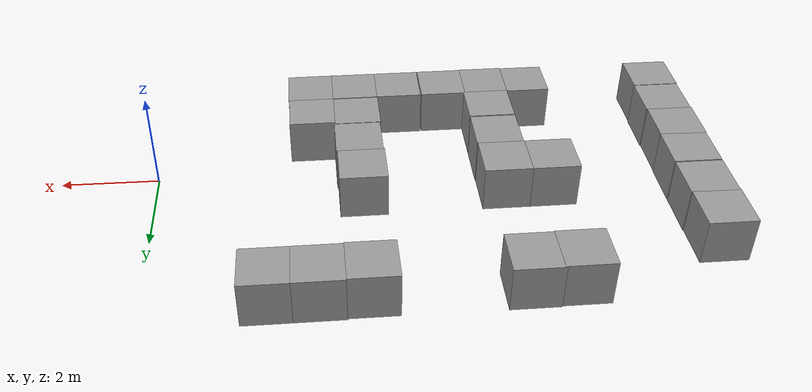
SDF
<sdf version="1.7">
 <model name="maze2.1">
  <link name="link_11">
   <inertial>
    <mass>1</mass>
    <inertia>
     <ixx>0.166667</ixx>
     <ixy>0</ixy>
     <ixz>0</ixz>
     <iyy>0.166667</iyy>
     <iyz>0</iyz>
     <izz>0.166667</izz>
    </inertia>
   </inertial>
   <pose>-7.25694 3.37065 0 0 -0 0</pose>
   <visual name="visual">
    <geometry><box><size>1 1 1</size></box></geometry>
    <material>
     <lighting>1</lighting>
     <script><uri>file://media/materials/scripts/gazebo.material</uri><name>Gazebo/Grey</name></script>
     <shader type="pixel"/>
    </material>
   </visual>
   <collision name="collision">
    <geometry><box><size>1 1 1</size></box></geometry>
    <surface>
     <friction>
      <ode><mu>1</mu><mu2>1</mu2><fdir1>0 0 0</fdir1><slip1>0</slip1><slip2>0</slip2></ode>
      <torsional>
       <coefficient>1</coefficient>
       <patch_radius>0</patch_radius>
       <surface_radius>0</surface_radius>
       <use_patch_radius>1</use_patch_radius>
       <ode><slip>0</slip></ode>
      </torsional>
     </friction>
     <bounce><restitution_coefficient>0</restitution_coefficient><threshold>1e+06</threshold></bounce>
     <contact>
      <collide_without_contact>0</collide_without_contact>
      <collide_without_contact_bitmask>1</collide_without_contact_bitmask>
      <collide_bitmask>1</collide_bitmask>
      <ode>
       <soft_cfm>0</soft_cfm>
       <soft_erp>0.2</soft_erp>
       <kp>1e+13</kp>
       <kd>1</kd>
       <max_vel>0.01</max_vel>
       <min_depth>0</min_depth>
      </ode>
      <bullet>
       <split_impulse>1</split_impulse>
       <split_impulse_penetration_threshold>-0.01</split_impulse_penetration_threshold>
       <soft_cfm>0</soft_cfm>
       <soft_erp>0.2</soft_erp>
       <kp>1e+13</kp>
       <kd>1</kd>
      </bullet>
     </contact>
    </surface>
   </collision>
  </link>
  <link name="link_13">
   <inertial>
    <mass>1</mass>
    <inertia>
     <ixx>0.166667</ixx>
     <ixy>0</ixy>
     <ixz>0</ixz>
     <iyy>0.166667</iyy>
     <iyz>0</iyz>
     <izz>0.166667</izz>
    </inertia>
   </inertial>
   <pose>-6.26868 -2.63049 0 0 -0 0</pose>
   <visual name="visual">
    <geometry><box><size>1 1 1</size></box></geometry>
    <material>
     <lighting>1</lighting>
     <script><uri>file://media/materials/scripts/gazebo.material</uri><name>Gazebo/Grey</name></script>
     <shader type="pixel"/>
    </material>
   </visual>
   <collision name="collision">
    <geometry><box><size>1 1 1</size></box></geometry>
    <surface>
     <friction>
      <ode><mu>1</mu><mu2>1</mu2><fdir1>0 0 0</fdir1><slip1>0</slip1><slip2>0</slip2></ode>
      <torsional>
       <coefficient>1</coefficient>
       <patch_radius>0</patch_radius>
       <surface_radius>0</surface_radius>
       <use_patch_radius>1</use_patch_radius>
       <ode><slip>0</slip></ode>
      </torsional>
     </friction>
     <bounce><restitution_coefficient>0</restitution_coefficient><threshold>1e+06</threshold></bounce>
     <contact>
      <collide_without_contact>0</collide_without_contact>
      <collide_without_contact_bitmask>1</collide_without_contact_bitmask>
      <collide_bitmask>1</collide_bitmask>
      <ode>
       <soft_cfm>0</soft_cfm>
       <soft_erp>0.2</soft_erp>
       <kp>1e+13</kp>
       <kd>1</kd>
       <max_vel>0.01</max_vel>
       <min_depth>0</min_depth>
      </ode>
      <bullet>
       <split_impulse>1</split_impulse>
       <split_impulse_penetration_threshold>-0.01</split_impulse_penetration_threshold>
       <soft_cfm>0</soft_cfm>
       <soft_erp>0.2</soft_erp>
       <kp>1e+13</kp>
       <kd>1</kd>
      </bullet>
     </contact>
    </surface>
   </collision>
  </link>
  <link name="link_14">
   <inertial>
    <mass>1</mass>
    <inertia>
     <ixx>0.166667</ixx>
     <ixy>0</ixy>
     <ixz>0</ixz>
     <iyy>0.166667</iyy>
     <iyz>0</iyz>
     <izz>0.166667</izz>
    </inertia>
   </inertial>
   <pose>-7.23944 -2.64333 0 0 -0 0</pose>
   <visual name="visual">
    <geometry><box><size>1 1 1</size></box></geometry>
    <material>
     <lighting>1</lighting>
     <script><uri>file://media/materials/scripts/gazebo.material</uri><name>Gazebo/Grey</name></script>
     <shader type="pixel"/>
    </material>
   </visual>
   <collision name="collision">
    <geometry><box><size>1 1 1</size></box></geometry>
    <surface>
     <friction>
      <ode><mu>1</mu><mu2>1</mu2><fdir1>0 0 0</fdir1><slip1>0</slip1><slip2>0</slip2></ode>
      <torsional>
       <coefficient>1</coefficient>
       <patch_radius>0</patch_radius>
       <surface_radius>0</surface_radius>
       <use_patch_radius>1</use_patch_radius>
       <ode><slip>0</slip></ode>
      </torsional>
     </friction>
     <bounce><restitution_coefficient>0</restitution_coefficient><threshold>1e+06</threshold></bounce>
     <contact>
      <collide_without_contact>0</collide_without_contact>
      <collide_without_contact_bitmask>1</collide_without_contact_bitmask>
      <collide_bitmask>1</collide_bitmask>
      <ode>
       <soft_cfm>0</soft_cfm>
       <soft_erp>0.2</soft_erp>
       <kp>1e+13</kp>
       <kd>1</kd>
       <max_vel>0.01</max_vel>
       <min_depth>0</min_depth>
      </ode>
      <bullet>
       <split_impulse>1</split_impulse>
       <split_impulse_penetration_threshold>-0.01</split_impulse_penetration_threshold>
       <soft_cfm>0</soft_cfm>
       <soft_erp>0.2</soft_erp>
       <kp>1e+13</kp>
       <kd>1</kd>
      </bullet>
     </contact>
    </surface>
   </collision>
  </link>
  <link name="link_1_clone_102">
   <inertial>
    <mass>1</mass>
    <inertia>
     <ixx>0.166667</ixx>
     <ixy>0</ixy>
     <ixz>0</ixz>
     <iyy>0.166667</iyy>
     <iyz>0</iyz>
     <izz>0.166667</izz>
    </inertia>
   </inertial>
   <pose>-2.26838 3.374 0 0 -0 0</pose>
   <visual name="visual">
    <geometry><box><size>1 1 1</size></box></geometry>
    <material>
     <lighting>1</lighting>
     <script><uri>file://media/materials/scripts/gazebo.material</uri><name>Gazebo/Grey</name></script>
     <shader type="pixel"><normal_map>__default__</normal_map></shader>
     <ambient>0.3 0.3 0.3 1</ambient>
     <diffuse>0.7 0.7 0.7 1</diffuse>
     <specular>0.01 0.01 0.01 1</specular>
     <emissive>0 0 0 1</emissive>
    </material>
   </visual>
   <collision name="collision">
    <geometry><box><size>1 1 1</size></box></geometry>
    <surface>
     <friction>
      <ode><mu>1</mu><mu2>1</mu2><fdir1>0 0 0</fdir1><slip1>0</slip1><slip2>0</slip2></ode>
      <torsional>
       <coefficient>1</coefficient>
       <patch_radius>0</patch_radius>
       <surface_radius>0</surface_radius>
       <use_patch_radius>1</use_patch_radius>
       <ode><slip>0</slip></ode>
      </torsional>
     </friction>
     <bounce><restitution_coefficient>0</restitution_coefficient><threshold>1e+06</threshold></bounce>
     <contact>
      <collide_without_contact>0</collide_without_contact>
      <collide_without_contact_bitmask>1</collide_without_contact_bitmask>
      <collide_bitmask>1</collide_bitmask>
      <ode>
       <soft_cfm>0</soft_cfm>
       <soft_erp>0.2</soft_erp>
       <kp>1e+13</kp>
       <kd>1</kd>
       <max_vel>0.01</max_vel>
       <min_depth>0</min_depth>
      </ode>
      <bullet>
       <split_impulse>1</split_impulse>
       <split_impulse_penetration_threshold>-0.01</split_impulse_penetration_threshold>
       <soft_cfm>0</soft_cfm>
       <soft_erp>0.2</soft_erp>
       <kp>1e+13</kp>
       <kd>1</kd>
      </bullet>
     </contact>
    </surface>
   </collision>
  </link>
  <link name="link_1_clone_104">
   <inertial>
    <mass>1</mass>
    <inertia>
     <ixx>0.166667</ixx>
     <ixy>0</ixy>
     <ixz>0</ixz>
     <iyy>0.166667</iyy>
     <iyz>0</iyz>
     <izz>0.166667</izz>
    </inertia>
   </inertial>
   <pose>-8.24618 0.374651 0 0 -0 0</pose>
   <visual name="visual">
    <geometry><box><size>1 1 1</size></box></geometry>
    <material>
     <lighting>1</lighting>
     <script><uri>file://media/materials/scripts/gazebo.material</uri><name>Gazebo/Grey</name></script>
     <shader type="pixel"><normal_map>__default__</normal_map></shader>
     <ambient>0.3 0.3 0.3 1</ambient>
     <diffuse>0.7 0.7 0.7 1</diffuse>
     <specular>0.01 0.01 0.01 1</specular>
     <emissive>0 0 0 1</emissive>
    </material>
   </visual>
   <collision name="collision">
    <geometry><box><size>1 1 1</size></box></geometry>
    <surface>
     <friction>
      <ode><mu>1</mu><mu2>1</mu2><fdir1>0 0 0</fdir1><slip1>0</slip1><slip2>0</slip2></ode>
      <torsional>
       <coefficient>1</coefficient>
       <patch_radius>0</patch_radius>
       <surface_radius>0</surface_radius>
       <use_patch_radius>1</use_patch_radius>
       <ode><slip>0</slip></ode>
      </torsional>
     </friction>
     <bounce><restitution_coefficient>0</restitution_coefficient><threshold>1e+06</threshold></bounce>
     <contact>
      <collide_without_contact>0</collide_without_contact>
      <collide_without_contact_bitmask>1</collide_without_contact_bitmask>
      <collide_bitmask>1</collide_bitmask>
      <ode>
       <soft_cfm>0</soft_cfm>
       <soft_erp>0.2</soft_erp>
       <kp>1e+13</kp>
       <kd>1</kd>
       <max_vel>0.01</max_vel>
       <min_depth>0</min_depth>
      </ode>
      <bullet>
       <split_impulse>1</split_impulse>
       <split_impulse_penetration_threshold>-0.01</split_impulse_penetration_threshold>
       <soft_cfm>0</soft_cfm>
       <soft_erp>0.2</soft_erp>
       <kp>1e+13</kp>
       <kd>1</kd>
      </bullet>
     </contact>
    </surface>
   </collision>
  </link>
  <link name="link_1_clone_106">
   <inertial>
    <mass>1</mass>
    <inertia>
     <ixx>0.166667</ixx>
     <ixy>0</ixy>
     <ixz>0</ixz>
     <iyy>0.166667</iyy>
     <iyz>0</iyz>
     <izz>0.166667</izz>
    </inertia>
   </inertial>
   <pose>-8.22273 3.35195 0 0 -0 0</pose>
   <visual name="visual">
    <geometry><box><size>1 1 1</size></box></geometry>
    <material>
     <lighting>1</lighting>
     <script><uri>file://media/materials/scripts/gazebo.material</uri><name>Gazebo/Grey</name></script>
     <shader type="pixel"><normal_map>__default__</normal_map></shader>
     <ambient>0.3 0.3 0.3 1</ambient>
     <diffuse>0.7 0.7 0.7 1</diffuse>
     <specular>0.01 0.01 0.01 1</specular>
     <emissive>0 0 0 1</emissive>
    </material>
   </visual>
   <collision name="collision">
    <geometry><box><size>1 1 1</size></box></geometry>
    <surface>
     <friction>
      <ode><mu>1</mu><mu2>1</mu2><fdir1>0 0 0</fdir1><slip1>0</slip1><slip2>0</slip2></ode>
      <torsional>
       <coefficient>1</coefficient>
       <patch_radius>0</patch_radius>
       <surface_radius>0</surface_radius>
       <use_patch_radius>1</use_patch_radius>
       <ode><slip>0</slip></ode>
      </torsional>
     </friction>
     <bounce><restitution_coefficient>0</restitution_coefficient><threshold>1e+06</threshold></bounce>
     <contact>
      <collide_without_contact>0</collide_without_contact>
      <collide_without_contact_bitmask>1</collide_without_contact_bitmask>
      <collide_bitmask>1</collide_bitmask>
      <ode>
       <soft_cfm>0</soft_cfm>
       <soft_erp>0.2</soft_erp>
       <kp>1e+13</kp>
       <kd>1</kd>
       <max_vel>0.01</max_vel>
       <min_depth>0</min_depth>
      </ode>
      <bullet>
       <split_impulse>1</split_impulse>
       <split_impulse_penetration_threshold>-0.01</split_impulse_penetration_threshold>
       <soft_cfm>0</soft_cfm>
       <soft_erp>0.2</soft_erp>
       <kp>1e+13</kp>
       <kd>1</kd>
      </bullet>
     </contact>
    </surface>
   </collision>
  </link>
  <link name="link_1_clone_108">
   <inertial>
    <mass>1</mass>
    <inertia>
     <ixx>0.166667</ixx>
     <ixy>0</ixy>
     <ixz>0</ixz>
     <iyy>0.166667</iyy>
     <iyz>0</iyz>
     <izz>0.166667</izz>
    </inertia>
   </inertial>
   <pose>-4.24618 3.35195 0 0 -0 0</pose>
   <visual name="visual">
    <geometry><box><size>1 1 1</size></box></geometry>
    <material>
     <lighting>1</lighting>
     <script><uri>file://media/materials/scripts/gazebo.material</uri><name>Gazebo/Grey</name></script>
     <shader type="pixel"><normal_map>__default__</normal_map></shader>
     <ambient>0.3 0.3 0.3 1</ambient>
     <diffuse>0.7 0.7 0.7 1</diffuse>
     <specular>0.01 0.01 0.01 1</specular>
     <emissive>0 0 0 1</emissive>
    </material>
   </visual>
   <collision name="collision">
    <geometry><box><size>1 1 1</size></box></geometry>
    <surface>
     <friction>
      <ode><mu>1</mu><mu2>1</mu2><fdir1>0 0 0</fdir1><slip1>0</slip1><slip2>0</slip2></ode>
      <torsional>
       <coefficient>1</coefficient>
       <patch_radius>0</patch_radius>
       <surface_radius>0</surface_radius>
       <use_patch_radius>1</use_patch_radius>
       <ode><slip>0</slip></ode>
      </torsional>
     </friction>
     <bounce><restitution_coefficient>0</restitution_coefficient><threshold>1e+06</threshold></bounce>
     <contact>
      <collide_without_contact>0</collide_without_contact>
      <collide_without_contact_bitmask>1</collide_without_contact_bitmask>
      <collide_bitmask>1</collide_bitmask>
      <ode>
       <soft_cfm>0</soft_cfm>
       <soft_erp>0.2</soft_erp>
       <kp>1e+13</kp>
       <kd>1</kd>
       <max_vel>0.01</max_vel>
       <min_depth>0</min_depth>
      </ode>
      <bullet>
       <split_impulse>1</split_impulse>
       <split_impulse_penetration_threshold>-0.01</split_impulse_penetration_threshold>
       <soft_cfm>0</soft_cfm>
       <soft_erp>0.2</soft_erp>
       <kp>1e+13</kp>
       <kd>1</kd>
      </bullet>
     </contact>
    </surface>
   </collision>
  </link>
  <link name="link_1_clone_110">
   <inertial>
    <mass>1</mass>
    <inertia>
     <ixx>0.166667</ixx>
     <ixy>0</ixy>
     <ixz>0</ixz>
     <iyy>0.166667</iyy>
     <iyz>0</iyz>
     <izz>0.166667</izz>
    </inertia>
   </inertial>
   <pose>-4.25612 0.390436 0 0 -0 0</pose>
   <visual name="visual">
    <geometry><box><size>1 1 1</size></box></geometry>
    <material>
     <lighting>1</lighting>
     <script><uri>file://media/materials/scripts/gazebo.material</uri><name>Gazebo/Grey</name></script>
     <shader type="pixel"><normal_map>__default__</normal_map></shader>
     <ambient>0.3 0.3 0.3 1</ambient>
     <diffuse>0.7 0.7 0.7 1</diffuse>
     <specular>0.01 0.01 0.01 1</specular>
     <emissive>0 0 0 1</emissive>
    </material>
   </visual>
   <collision name="collision">
    <geometry><box><size>1 1 1</size></box></geometry>
    <surface>
     <friction>
      <ode><mu>1</mu><mu2>1</mu2><fdir1>0 0 0</fdir1><slip1>0</slip1><slip2>0</slip2></ode>
      <torsional>
       <coefficient>1</coefficient>
       <patch_radius>0</patch_radius>
       <surface_radius>0</surface_radius>
       <use_patch_radius>1</use_patch_radius>
       <ode><slip>0</slip></ode>
      </torsional>
     </friction>
     <bounce><restitution_coefficient>0</restitution_coefficient><threshold>1e+06</threshold></bounce>
     <contact>
      <collide_without_contact>0</collide_without_contact>
      <collide_without_contact_bitmask>1</collide_without_contact_bitmask>
      <collide_bitmask>1</collide_bitmask>
      <ode>
       <soft_cfm>0</soft_cfm>
       <soft_erp>0.2</soft_erp>
       <kp>1e+13</kp>
       <kd>1</kd>
       <max_vel>0.01</max_vel>
       <min_depth>0</min_depth>
      </ode>
      <bullet>
       <split_impulse>1</split_impulse>
       <split_impulse_penetration_threshold>-0.01</split_impulse_penetration_threshold>
       <soft_cfm>0</soft_cfm>
       <soft_erp>0.2</soft_erp>
       <kp>1e+13</kp>
       <kd>1</kd>
      </bullet>
     </contact>
    </surface>
   </collision>
  </link>
  <link name="link_1_clone_112">
   <inertial>
    <mass>1</mass>
    <inertia>
     <ixx>0.166667</ixx>
     <ixy>0</ixy>
     <ixz>0</ixz>
     <iyy>0.166667</iyy>
     <iyz>0</iyz>
     <izz>0.166667</izz>
    </inertia>
   </inertial>
   <pose>-7.24618 0.374651 0 0 -0 0</pose>
   <visual name="visual">
    <geometry><box><size>1 1 1</size></box></geometry>
    <material>
     <lighting>1</lighting>
     <script><uri>file://media/materials/scripts/gazebo.material</uri><name>Gazebo/Grey</name></script>
     <shader type="pixel"><normal_map>__default__</normal_map></shader>
     <ambient>0.3 0.3 0.3 1</ambient>
     <diffuse>0.7 0.7 0.7 1</diffuse>
     <specular>0.01 0.01 0.01 1</specular>
     <emissive>0 0 0 1</emissive>
    </material>
   </visual>
   <collision name="collision">
    <geometry><box><size>1 1 1</size></box></geometry>
    <surface>
     <friction>
      <ode><mu>1</mu><mu2>1</mu2><fdir1>0 0 0</fdir1><slip1>0</slip1><slip2>0</slip2></ode>
      <torsional>
       <coefficient>1</coefficient>
       <patch_radius>0</patch_radius>
       <surface_radius>0</surface_radius>
       <use_patch_radius>1</use_patch_radius>
       <ode><slip>0</slip></ode>
      </torsional>
     </friction>
     <bounce><restitution_coefficient>0</restitution_coefficient><threshold>1e+06</threshold></bounce>
     <contact>
      <collide_without_contact>0</collide_without_contact>
      <collide_without_contact_bitmask>1</collide_without_contact_bitmask>
      <collide_bitmask>1</collide_bitmask>
      <ode>
       <soft_cfm>0</soft_cfm>
       <soft_erp>0.2</soft_erp>
       <kp>1e+13</kp>
       <kd>1</kd>
       <max_vel>0.01</max_vel>
       <min_depth>0</min_depth>
      </ode>
      <bullet>
       <split_impulse>1</split_impulse>
       <split_impulse_penetration_threshold>-0.01</split_impulse_penetration_threshold>
       <soft_cfm>0</soft_cfm>
       <soft_erp>0.2</soft_erp>
       <kp>1e+13</kp>
       <kd>1</kd>
      </bullet>
     </contact>
    </surface>
   </collision>
  </link>
  <link name="link_1_clone_114">
   <inertial>
    <mass>1</mass>
    <inertia>
     <ixx>0.166667</ixx>
     <ixy>0</ixy>
     <ixz>0</ixz>
     <iyy>0.166667</iyy>
     <iyz>0</iyz>
     <izz>0.166667</izz>
    </inertia>
   </inertial>
   <pose>-3.24618 3.3741 0 0 -0 0</pose>
   <visual name="visual">
    <geometry><box><size>1 1 1</size></box></geometry>
    <material>
     <lighting>1</lighting>
     <script><uri>file://media/materials/scripts/gazebo.material</uri><name>Gazebo/Grey</name></script>
     <shader type="pixel"><normal_map>__default__</normal_map></shader>
     <ambient>0.3 0.3 0.3 1</ambient>
     <diffuse>0.7 0.7 0.7 1</diffuse>
     <specular>0.01 0.01 0.01 1</specular>
     <emissive>0 0 0 1</emissive>
    </material>
   </visual>
   <collision name="collision">
    <geometry><box><size>1 1 1</size></box></geometry>
    <surface>
     <friction>
      <ode><mu>1</mu><mu2>1</mu2><fdir1>0 0 0</fdir1><slip1>0</slip1><slip2>0</slip2></ode>
      <torsional>
       <coefficient>1</coefficient>
       <patch_radius>0</patch_radius>
       <surface_radius>0</surface_radius>
       <use_patch_radius>1</use_patch_radius>
       <ode><slip>0</slip></ode>
      </torsional>
     </friction>
     <bounce><restitution_coefficient>0</restitution_coefficient><threshold>1e+06</threshold></bounce>
     <contact>
      <collide_without_contact>0</collide_without_contact>
      <collide_without_contact_bitmask>1</collide_without_contact_bitmask>
      <collide_bitmask>1</collide_bitmask>
      <ode>
       <soft_cfm>0</soft_cfm>
       <soft_erp>0.2</soft_erp>
       <kp>1e+13</kp>
       <kd>1</kd>
       <max_vel>0.01</max_vel>
       <min_depth>0</min_depth>
      </ode>
      <bullet>
       <split_impulse>1</split_impulse>
       <split_impulse_penetration_threshold>-0.01</split_impulse_penetration_threshold>
       <soft_cfm>0</soft_cfm>
       <soft_erp>0.2</soft_erp>
       <kp>1e+13</kp>
       <kd>1</kd>
      </bullet>
     </contact>
    </surface>
   </collision>
  </link>
  <link name="link_1_clone_116">
   <inertial>
    <mass>1</mass>
    <inertia>
     <ixx>0.166667</ixx>
     <ixy>0</ixy>
     <ixz>0</ixz>
     <iyy>0.166667</iyy>
     <iyz>0</iyz>
     <izz>0.166667</izz>
    </inertia>
   </inertial>
   <pose>-7.23467 -0.62533 0 0 -0 0</pose>
   <visual name="visual">
    <geometry><box><size>1 1 1</size></box></geometry>
    <material>
     <lighting>1</lighting>
     <script><uri>file://media/materials/scripts/gazebo.material</uri><name>Gazebo/Grey</name></script>
     <shader type="pixel"><normal_map>__default__</normal_map></shader>
     <ambient>0.3 0.3 0.3 1</ambient>
     <diffuse>0.7 0.7 0.7 1</diffuse>
     <specular>0.01 0.01 0.01 1</specular>
     <emissive>0 0 0 1</emissive>
    </material>
   </visual>
   <collision name="collision">
    <geometry><box><size>1 1 1</size></box></geometry>
    <surface>
     <friction>
      <ode><mu>1</mu><mu2>1</mu2><fdir1>0 0 0</fdir1><slip1>0</slip1><slip2>0</slip2></ode>
      <torsional>
       <coefficient>1</coefficient>
       <patch_radius>0</patch_radius>
       <surface_radius>0</surface_radius>
       <use_patch_radius>1</use_patch_radius>
       <ode><slip>0</slip></ode>
      </torsional>
     </friction>
     <bounce><restitution_coefficient>0</restitution_coefficient><threshold>1e+06</threshold></bounce>
     <contact>
      <collide_without_contact>0</collide_without_contact>
      <collide_without_contact_bitmask>1</collide_without_contact_bitmask>
      <collide_bitmask>1</collide_bitmask>
      <ode>
       <soft_cfm>0</soft_cfm>
       <soft_erp>0.2</soft_erp>
       <kp>1e+13</kp>
       <kd>1</kd>
       <max_vel>0.01</max_vel>
       <min_depth>0</min_depth>
      </ode>
      <bullet>
       <split_impulse>1</split_impulse>
       <split_impulse_penetration_threshold>-0.01</split_impulse_penetration_threshold>
       <soft_cfm>0</soft_cfm>
       <soft_erp>0.2</soft_erp>
       <kp>1e+13</kp>
       <kd>1</kd>
      </bullet>
     </contact>
    </surface>
   </collision>
  </link>
  <link name="link_1_clone_117">
   <inertial>
    <mass>1</mass>
    <inertia>
     <ixx>0.166667</ixx>
     <ixy>0</ixy>
     <ixz>0</ixz>
     <iyy>0.166667</iyy>
     <iyz>0</iyz>
     <izz>0.166667</izz>
    </inertia>
   </inertial>
   <pose>-7.23445 -1.65692 0 0 -0 0</pose>
   <visual name="visual">
    <geometry><box><size>1 1 1</size></box></geometry>
    <material>
     <lighting>1</lighting>
     <script><uri>file://media/materials/scripts/gazebo.material</uri><name>Gazebo/Grey</name></script>
     <shader type="pixel"><normal_map>__default__</normal_map></shader>
     <ambient>0.3 0.3 0.3 1</ambient>
     <diffuse>0.7 0.7 0.7 1</diffuse>
     <specular>0.01 0.01 0.01 1</specular>
     <emissive>0 0 0 1</emissive>
    </material>
   </visual>
   <collision name="collision">
    <geometry><box><size>1 1 1</size></box></geometry>
    <surface>
     <friction>
      <ode><mu>1</mu><mu2>1</mu2><fdir1>0 0 0</fdir1><slip1>0</slip1><slip2>0</slip2></ode>
      <torsional>
       <coefficient>1</coefficient>
       <patch_radius>0</patch_radius>
       <surface_radius>0</surface_radius>
       <use_patch_radius>1</use_patch_radius>
       <ode><slip>0</slip></ode>
      </torsional>
     </friction>
     <bounce><restitution_coefficient>0</restitution_coefficient><threshold>1e+06</threshold></bounce>
     <contact>
      <collide_without_contact>0</collide_without_contact>
      <collide_without_contact_bitmask>1</collide_without_contact_bitmask>
      <collide_bitmask>1</collide_bitmask>
      <ode>
       <soft_cfm>0</soft_cfm>
       <soft_erp>0.2</soft_erp>
       <kp>1e+13</kp>
       <kd>1</kd>
       <max_vel>0.01</max_vel>
       <min_depth>0</min_depth>
      </ode>
      <bullet>
       <split_impulse>1</split_impulse>
       <split_impulse_penetration_threshold>-0.01</split_impulse_penetration_threshold>
       <soft_cfm>0</soft_cfm>
       <soft_erp>0.2</soft_erp>
       <kp>1e+13</kp>
       <kd>1</kd>
      </bullet>
     </contact>
    </surface>
   </collision>
  </link>
  <link name="link_1_clone_118">
   <inertial>
    <mass>1</mass>
    <inertia>
     <ixx>0.166667</ixx>
     <ixy>0</ixy>
     <ixz>0</ixz>
     <iyy>0.166667</iyy>
     <iyz>0</iyz>
     <izz>0.166667</izz>
    </inertia>
   </inertial>
   <pose>-5.24618 -2.62535 0 0 -0 0</pose>
   <visual name="visual">
    <geometry><box><size>1 1 1</size></box></geometry>
    <material>
     <lighting>1</lighting>
     <script><uri>file://media/materials/scripts/gazebo.material</uri><name>Gazebo/Grey</name></script>
     <shader type="pixel"><normal_map>__default__</normal_map></shader>
     <ambient>0.3 0.3 0.3 1</ambient>
     <diffuse>0.7 0.7 0.7 1</diffuse>
     <specular>0.01 0.01 0.01 1</specular>
     <emissive>0 0 0 1</emissive>
    </material>
   </visual>
   <collision name="collision">
    <geometry><box><size>1 1 1</size></box></geometry>
    <surface>
     <friction>
      <ode><mu>1</mu><mu2>1</mu2><fdir1>0 0 0</fdir1><slip1>0</slip1><slip2>0</slip2></ode>
      <torsional>
       <coefficient>1</coefficient>
       <patch_radius>0</patch_radius>
       <surface_radius>0</surface_radius>
       <use_patch_radius>1</use_patch_radius>
       <ode><slip>0</slip></ode>
      </torsional>
     </friction>
     <bounce><restitution_coefficient>0</restitution_coefficient><threshold>1e+06</threshold></bounce>
     <contact>
      <collide_without_contact>0</collide_without_contact>
      <collide_without_contact_bitmask>1</collide_without_contact_bitmask>
      <collide_bitmask>1</collide_bitmask>
      <ode>
       <soft_cfm>0</soft_cfm>
       <soft_erp>0.2</soft_erp>
       <kp>1e+13</kp>
       <kd>1</kd>
       <max_vel>0.01</max_vel>
       <min_depth>0</min_depth>
      </ode>
      <bullet>
       <split_impulse>1</split_impulse>
       <split_impulse_penetration_threshold>-0.01</split_impulse_penetration_threshold>
       <soft_cfm>0</soft_cfm>
       <soft_erp>0.2</soft_erp>
       <kp>1e+13</kp>
       <kd>1</kd>
      </bullet>
     </contact>
    </surface>
   </collision>
  </link>
  <link name="link_1_clone_119">
   <inertial>
    <mass>1</mass>
    <inertia>
     <ixx>0.166667</ixx>
     <ixy>0</ixy>
     <ixz>0</ixz>
     <iyy>0.166667</iyy>
     <iyz>0</iyz>
     <izz>0.166667</izz>
    </inertia>
   </inertial>
   <pose>-4.24618 -2.62535 0 0 -0 0</pose>
   <visual name="visual">
    <geometry><box><size>1 1 1</size></box></geometry>
    <material>
     <lighting>1</lighting>
     <script><uri>file://media/materials/scripts/gazebo.material</uri><name>Gazebo/Grey</name></script>
     <shader type="pixel"><normal_map>__default__</normal_map></shader>
     <ambient>0.3 0.3 0.3 1</ambient>
     <diffuse>0.7 0.7 0.7 1</diffuse>
     <specular>0.01 0.01 0.01 1</specular>
     <emissive>0 0 0 1</emissive>
    </material>
   </visual>
   <collision name="collision">
    <geometry><box><size>1 1 1</size></box></geometry>
    <surface>
     <friction>
      <ode><mu>1</mu><mu2>1</mu2><fdir1>0 0 0</fdir1><slip1>0</slip1><slip2>0</slip2></ode>
      <torsional>
       <coefficient>1</coefficient>
       <patch_radius>0</patch_radius>
       <surface_radius>0</surface_radius>
       <use_patch_radius>1</use_patch_radius>
       <ode><slip>0</slip></ode>
      </torsional>
     </friction>
     <bounce><restitution_coefficient>0</restitution_coefficient><threshold>1e+06</threshold></bounce>
     <contact>
      <collide_without_contact>0</collide_without_contact>
      <collide_without_contact_bitmask>1</collide_without_contact_bitmask>
      <collide_bitmask>1</collide_bitmask>
      <ode>
       <soft_cfm>0</soft_cfm>
       <soft_erp>0.2</soft_erp>
       <kp>1e+13</kp>
       <kd>1</kd>
       <max_vel>0.01</max_vel>
       <min_depth>0</min_depth>
      </ode>
      <bullet>
       <split_impulse>1</split_impulse>
       <split_impulse_penetration_threshold>-0.01</split_impulse_penetration_threshold>
       <soft_cfm>0</soft_cfm>
       <soft_erp>0.2</soft_erp>
       <kp>1e+13</kp>
       <kd>1</kd>
      </bullet>
     </contact>
    </surface>
   </collision>
  </link>
  <link name="link_1_clone_120">
   <inertial>
    <mass>1</mass>
    <inertia>
     <ixx>0.166667</ixx>
     <ixy>0</ixy>
     <ixz>0</ixz>
     <iyy>0.166667</iyy>
     <iyz>0</iyz>
     <izz>0.166667</izz>
    </inertia>
   </inertial>
   <pose>-3.24618 -2.62535 0 0 -0 0</pose>
   <visual name="visual">
    <geometry><box><size>1 1 1</size></box></geometry>
    <material>
     <lighting>1</lighting>
     <script><uri>file://media/materials/scripts/gazebo.material</uri><name>Gazebo/Grey</name></script>
     <shader type="pixel"><normal_map>__default__</normal_map></shader>
     <ambient>0.3 0.3 0.3 1</ambient>
     <diffuse>0.7 0.7 0.7 1</diffuse>
     <specular>0.01 0.01 0.01 1</specular>
     <emissive>0 0 0 1</emissive>
    </material>
   </visual>
   <collision name="collision">
    <geometry><box><size>1 1 1</size></box></geometry>
    <surface>
     <friction>
      <ode><mu>1</mu><mu2>1</mu2><fdir1>0 0 0</fdir1><slip1>0</slip1><slip2>0</slip2></ode>
      <torsional>
       <coefficient>1</coefficient>
       <patch_radius>0</patch_radius>
       <surface_radius>0</surface_radius>
       <use_patch_radius>1</use_patch_radius>
       <ode><slip>0</slip></ode>
      </torsional>
     </friction>
     <bounce><restitution_coefficient>0</restitution_coefficient><threshold>1e+06</threshold></bounce>
     <contact>
      <collide_without_contact>0</collide_without_contact>
      <collide_without_contact_bitmask>1</collide_without_contact_bitmask>
      <collide_bitmask>1</collide_bitmask>
      <ode>
       <soft_cfm>0</soft_cfm>
       <soft_erp>0.2</soft_erp>
       <kp>1e+13</kp>
       <kd>1</kd>
       <max_vel>0.01</max_vel>
       <min_depth>0</min_depth>
      </ode>
      <bullet>
       <split_impulse>1</split_impulse>
       <split_impulse_penetration_threshold>-0.01</split_impulse_penetration_threshold>
       <soft_cfm>0</soft_cfm>
       <soft_erp>0.2</soft_erp>
       <kp>1e+13</kp>
       <kd>1</kd>
      </bullet>
     </contact>
    </surface>
   </collision>
  </link>
  <link name="link_1_clone_122">
   <inertial>
    <mass>1</mass>
    <inertia>
     <ixx>0.166667</ixx>
     <ixy>0</ixy>
     <ixz>0</ixz>
     <iyy>0.166667</iyy>
     <iyz>0</iyz>
     <izz>0.166667</izz>
    </inertia>
   </inertial>
   <pose>-8.19964 -2.62535 0 0 -0 0</pose>
   <visual name="visual">
    <geometry><box><size>1 1 1</size></box></geometry>
    <material>
     <lighting>1</lighting>
     <script><uri>file://media/materials/scripts/gazebo.material</uri><name>Gazebo/Grey</name></script>
     <shader type="pixel"><normal_map>__default__</normal_map></shader>
     <ambient>0.3 0.3 0.3 1</ambient>
     <diffuse>0.7 0.7 0.7 1</diffuse>
     <specular>0.01 0.01 0.01 1</specular>
     <emissive>0 0 0 1</emissive>
    </material>
   </visual>
   <collision name="collision">
    <geometry><box><size>1 1 1</size></box></geometry>
    <surface>
     <friction>
      <ode><mu>1</mu><mu2>1</mu2><fdir1>0 0 0</fdir1><slip1>0</slip1><slip2>0</slip2></ode>
      <torsional>
       <coefficient>1</coefficient>
       <patch_radius>0</patch_radius>
       <surface_radius>0</surface_radius>
       <use_patch_radius>1</use_patch_radius>
       <ode><slip>0</slip></ode>
      </torsional>
     </friction>
     <bounce><restitution_coefficient>0</restitution_coefficient><threshold>1e+06</threshold></bounce>
     <contact>
      <collide_without_contact>0</collide_without_contact>
      <collide_without_contact_bitmask>1</collide_without_contact_bitmask>
      <collide_bitmask>1</collide_bitmask>
      <ode>
       <soft_cfm>0</soft_cfm>
       <soft_erp>0.2</soft_erp>
       <kp>1e+13</kp>
       <kd>1</kd>
       <max_vel>0.01</max_vel>
       <min_depth>0</min_depth>
      </ode>
      <bullet>
       <split_impulse>1</split_impulse>
       <split_impulse_penetration_threshold>-0.01</split_impulse_penetration_threshold>
       <soft_cfm>0</soft_cfm>
       <soft_erp>0.2</soft_erp>
       <kp>1e+13</kp>
       <kd>1</kd>
      </bullet>
     </contact>
    </surface>
   </collision>
  </link>
  <link name="link_1_clone_22">
   <inertial>
    <mass>1</mass>
    <inertia>
     <ixx>0.166667</ixx>
     <ixy>0</ixy>
     <ixz>0</ixz>
     <iyy>0.166667</iyy>
     <iyz>0</iyz>
     <izz>0.166667</izz>
    </inertia>
   </inertial>
   <pose>-11.2263 2.38996 0 0 -0 0</pose>
   <visual name="visual">
    <geometry><box><size>1 1 1</size></box></geometry>
    <material>
     <lighting>1</lighting>
     <script><uri>file://media/materials/scripts/gazebo.material</uri><name>Gazebo/Grey</name></script>
     <shader type="pixel"><normal_map>__default__</normal_map></shader>
     <ambient>0.3 0.3 0.3 1</ambient>
     <diffuse>0.7 0.7 0.7 1</diffuse>
     <specular>0.01 0.01 0.01 1</specular>
     <emissive>0 0 0 1</emissive>
    </material>
   </visual>
   <collision name="collision">
    <geometry><box><size>1 1 1</size></box></geometry>
    <surface>
     <friction>
      <ode><mu>1</mu><mu2>1</mu2><fdir1>0 0 0</fdir1><slip1>0</slip1><slip2>0</slip2></ode>
      <torsional>
       <coefficient>1</coefficient>
       <patch_radius>0</patch_radius>
       <surface_radius>0</surface_radius>
       <use_patch_radius>1</use_patch_radius>
       <ode><slip>0</slip></ode>
      </torsional>
     </friction>
     <bounce><restitution_coefficient>0</restitution_coefficient><threshold>1e+06</threshold></bounce>
     <contact>
      <collide_without_contact>0</collide_without_contact>
      <collide_without_contact_bitmask>1</collide_without_contact_bitmask>
      <collide_bitmask>1</collide_bitmask>
      <ode>
       <soft_cfm>0</soft_cfm>
       <soft_erp>0.2</soft_erp>
       <kp>1e+13</kp>
       <kd>1</kd>
       <max_vel>0.01</max_vel>
       <min_depth>0</min_depth>
      </ode>
      <bullet>
       <split_impulse>1</split_impulse>
       <split_impulse_penetration_threshold>-0.01</split_impulse_penetration_threshold>
       <soft_cfm>0</soft_cfm>
       <soft_erp>0.2</soft_erp>
       <kp>1e+13</kp>
       <kd>1</kd>
      </bullet>
     </contact>
    </surface>
   </collision>
  </link>
  <link name="link_1_clone_23">
   <inertial>
    <mass>1</mass>
    <inertia>
     <ixx>0.166667</ixx>
     <ixy>0</ixy>
     <ixz>0</ixz>
     <iyy>0.166667</iyy>
     <iyz>0</iyz>
     <izz>0.166667</izz>
    </inertia>
   </inertial>
   <pose>-11.2109 1.40534 0 0 -0 0</pose>
   <visual name="visual">
    <geometry><box><size>1 1 1</size></box></geometry>
    <material>
     <lighting>1</lighting>
     <script><uri>file://media/materials/scripts/gazebo.material</uri><name>Gazebo/Grey</name></script>
     <shader type="pixel"><normal_map>__default__</normal_map></shader>
     <ambient>0.3 0.3 0.3 1</ambient>
     <diffuse>0.7 0.7 0.7 1</diffuse>
     <specular>0.01 0.01 0.01 1</specular>
     <emissive>0 0 0 1</emissive>
    </material>
   </visual>
   <collision name="collision">
    <geometry><box><size>1 1 1</size></box></geometry>
    <surface>
     <friction>
      <ode><mu>1</mu><mu2>1</mu2><fdir1>0 0 0</fdir1><slip1>0</slip1><slip2>0</slip2></ode>
      <torsional>
       <coefficient>1</coefficient>
       <patch_radius>0</patch_radius>
       <surface_radius>0</surface_radius>
       <use_patch_radius>1</use_patch_radius>
       <ode><slip>0</slip></ode>
      </torsional>
     </friction>
     <bounce><restitution_coefficient>0</restitution_coefficient><threshold>1e+06</threshold></bounce>
     <contact>
      <collide_without_contact>0</collide_without_contact>
      <collide_without_contact_bitmask>1</collide_without_contact_bitmask>
      <collide_bitmask>1</collide_bitmask>
      <ode>
       <soft_cfm>0</soft_cfm>
       <soft_erp>0.2</soft_erp>
       <kp>1e+13</kp>
       <kd>1</kd>
       <max_vel>0.01</max_vel>
       <min_depth>0</min_depth>
      </ode>
      <bullet>
       <split_impulse>1</split_impulse>
       <split_impulse_penetration_threshold>-0.01</split_impulse_penetration_threshold>
       <soft_cfm>0</soft_cfm>
       <soft_erp>0.2</soft_erp>
       <kp>1e+13</kp>
       <kd>1</kd>
      </bullet>
     </contact>
    </surface>
   </collision>
  </link>
  <link name="link_1_clone_24">
   <inertial>
    <mass>1</mass>
    <inertia>
     <ixx>0.166667</ixx>
     <ixy>0</ixy>
     <ixz>0</ixz>
     <iyy>0.166667</iyy>
     <iyz>0</iyz>
     <izz>0.166667</izz>
    </inertia>
   </inertial>
   <pose>-11.2109 0.374651 0 0 -0 0</pose>
   <visual name="visual">
    <geometry><box><size>1 1 1</size></box></geometry>
    <material>
     <lighting>1</lighting>
     <script><uri>file://media/materials/scripts/gazebo.material</uri><name>Gazebo/Grey</name></script>
     <shader type="pixel"><normal_map>__default__</normal_map></shader>
     <ambient>0.3 0.3 0.3 1</ambient>
     <diffuse>0.7 0.7 0.7 1</diffuse>
     <specular>0.01 0.01 0.01 1</specular>
     <emissive>0 0 0 1</emissive>
    </material>
   </visual>
   <collision name="collision">
    <geometry><box><size>1 1 1</size></box></geometry>
    <surface>
     <friction>
      <ode><mu>1</mu><mu2>1</mu2><fdir1>0 0 0</fdir1><slip1>0</slip1><slip2>0</slip2></ode>
      <torsional>
       <coefficient>1</coefficient>
       <patch_radius>0</patch_radius>
       <surface_radius>0</surface_radius>
       <use_patch_radius>1</use_patch_radius>
       <ode><slip>0</slip></ode>
      </torsional>
     </friction>
     <bounce><restitution_coefficient>0</restitution_coefficient><threshold>1e+06</threshold></bounce>
     <contact>
      <collide_without_contact>0</collide_without_contact>
      <collide_without_contact_bitmask>1</collide_without_contact_bitmask>
      <collide_bitmask>1</collide_bitmask>
      <ode>
       <soft_cfm>0</soft_cfm>
       <soft_erp>0.2</soft_erp>
       <kp>1e+13</kp>
       <kd>1</kd>
       <max_vel>0.01</max_vel>
       <min_depth>0</min_depth>
      </ode>
      <bullet>
       <split_impulse>1</split_impulse>
       <split_impulse_penetration_threshold>-0.01</split_impulse_penetration_threshold>
       <soft_cfm>0</soft_cfm>
       <soft_erp>0.2</soft_erp>
       <kp>1e+13</kp>
       <kd>1</kd>
      </bullet>
     </contact>
    </surface>
   </collision>
  </link>
  <link name="link_1_clone_25">
   <inertial>
    <mass>1</mass>
    <inertia>
     <ixx>0.166667</ixx>
     <ixy>0</ixy>
     <ixz>0</ixz>
     <iyy>0.166667</iyy>
     <iyz>0</iyz>
     <izz>0.166667</izz>
    </inertia>
   </inertial>
   <pose>-11.226 -0.610005 0 0 -0 0</pose>
   <visual name="visual">
    <geometry><box><size>1 1 1</size></box></geometry>
    <material>
     <lighting>1</lighting>
     <script><uri>file://media/materials/scripts/gazebo.material</uri><name>Gazebo/Grey</name></script>
     <shader type="pixel"><normal_map>__default__</normal_map></shader>
     <ambient>0.3 0.3 0.3 1</ambient>
     <diffuse>0.7 0.7 0.7 1</diffuse>
     <specular>0.01 0.01 0.01 1</specular>
     <emissive>0 0 0 1</emissive>
    </material>
   </visual>
   <collision name="collision">
    <geometry><box><size>1 1 1</size></box></geometry>
    <surface>
     <friction>
      <ode><mu>1</mu><mu2>1</mu2><fdir1>0 0 0</fdir1><slip1>0</slip1><slip2>0</slip2></ode>
      <torsional>
       <coefficient>1</coefficient>
       <patch_radius>0</patch_radius>
       <surface_radius>0</surface_radius>
       <use_patch_radius>1</use_patch_radius>
       <ode><slip>0</slip></ode>
      </torsional>
     </friction>
     <bounce><restitution_coefficient>0</restitution_coefficient><threshold>1e+06</threshold></bounce>
     <contact>
      <collide_without_contact>0</collide_without_contact>
      <collide_without_contact_bitmask>1</collide_without_contact_bitmask>
      <collide_bitmask>1</collide_bitmask>
      <ode>
       <soft_cfm>0</soft_cfm>
       <soft_erp>0.2</soft_erp>
       <kp>1e+13</kp>
       <kd>1</kd>
       <max_vel>0.01</max_vel>
       <min_depth>0</min_depth>
      </ode>
      <bullet>
       <split_impulse>1</split_impulse>
       <split_impulse_penetration_threshold>-0.01</split_impulse_penetration_threshold>
       <soft_cfm>0</soft_cfm>
       <soft_erp>0.2</soft_erp>
       <kp>1e+13</kp>
       <kd>1</kd>
      </bullet>
     </contact>
    </surface>
   </collision>
  </link>
  <link name="link_1_clone_26">
   <inertial>
    <mass>1</mass>
    <inertia>
     <ixx>0.166667</ixx>
     <ixy>0</ixy>
     <ixz>0</ixz>
     <iyy>0.166667</iyy>
     <iyz>0</iyz>
     <izz>0.166667</izz>
    </inertia>
   </inertial>
   <pose>-11.2109 -1.61 0 0 -0 0</pose>
   <visual name="visual">
    <geometry><box><size>1 1 1</size></box></geometry>
    <material>
     <lighting>1</lighting>
     <script><uri>file://media/materials/scripts/gazebo.material</uri><name>Gazebo/Grey</name></script>
     <shader type="pixel"><normal_map>__default__</normal_map></shader>
     <ambient>0.3 0.3 0.3 1</ambient>
     <diffuse>0.7 0.7 0.7 1</diffuse>
     <specular>0.01 0.01 0.01 1</specular>
     <emissive>0 0 0 1</emissive>
    </material>
   </visual>
   <collision name="collision">
    <geometry><box><size>1 1 1</size></box></geometry>
    <surface>
     <friction>
      <ode><mu>1</mu><mu2>1</mu2><fdir1>0 0 0</fdir1><slip1>0</slip1><slip2>0</slip2></ode>
      <torsional>
       <coefficient>1</coefficient>
       <patch_radius>0</patch_radius>
       <surface_radius>0</surface_radius>
       <use_patch_radius>1</use_patch_radius>
       <ode><slip>0</slip></ode>
      </torsional>
     </friction>
     <bounce><restitution_coefficient>0</restitution_coefficient><threshold>1e+06</threshold></bounce>
     <contact>
      <collide_without_contact>0</collide_without_contact>
      <collide_without_contact_bitmask>1</collide_without_contact_bitmask>
      <collide_bitmask>1</collide_bitmask>
      <ode>
       <soft_cfm>0</soft_cfm>
       <soft_erp>0.2</soft_erp>
       <kp>1e+13</kp>
       <kd>1</kd>
       <max_vel>0.01</max_vel>
       <min_depth>0</min_depth>
      </ode>
      <bullet>
       <split_impulse>1</split_impulse>
       <split_impulse_penetration_threshold>-0.01</split_impulse_penetration_threshold>
       <soft_cfm>0</soft_cfm>
       <soft_erp>0.2</soft_erp>
       <kp>1e+13</kp>
       <kd>1</kd>
      </bullet>
     </contact>
    </surface>
   </collision>
  </link>
  <link name="link_1_clone_27">
   <inertial>
    <mass>1</mass>
    <inertia>
     <ixx>0.166667</ixx>
     <ixy>0</ixy>
     <ixz>0</ixz>
     <iyy>0.166667</iyy>
     <iyz>0</iyz>
     <izz>0.166667</izz>
    </inertia>
   </inertial>
   <pose>-11.226 -2.62534 0 0 -0 0</pose>
   <visual name="visual">
    <geometry><box><size>1 1 1</size></box></geometry>
    <material>
     <lighting>1</lighting>
     <script><uri>file://media/materials/scripts/gazebo.material</uri><name>Gazebo/Grey</name></script>
     <shader type="pixel"><normal_map>__default__</normal_map></shader>
     <ambient>0.3 0.3 0.3 1</ambient>
     <diffuse>0.7 0.7 0.7 1</diffuse>
     <specular>0.01 0.01 0.01 1</specular>
     <emissive>0 0 0 1</emissive>
    </material>
   </visual>
   <collision name="collision">
    <geometry><box><size>1 1 1</size></box></geometry>
    <surface>
     <friction>
      <ode><mu>1</mu><mu2>1</mu2><fdir1>0 0 0</fdir1><slip1>0</slip1><slip2>0</slip2></ode>
      <torsional>
       <coefficient>1</coefficient>
       <patch_radius>0</patch_radius>
       <surface_radius>0</surface_radius>
       <use_patch_radius>1</use_patch_radius>
       <ode><slip>0</slip></ode>
      </torsional>
     </friction>
     <bounce><restitution_coefficient>0</restitution_coefficient><threshold>1e+06</threshold></bounce>
     <contact>
      <collide_without_contact>0</collide_without_contact>
      <collide_without_contact_bitmask>1</collide_without_contact_bitmask>
      <collide_bitmask>1</collide_bitmask>
      <ode>
       <soft_cfm>0</soft_cfm>
       <soft_erp>0.2</soft_erp>
       <kp>1e+13</kp>
       <kd>1</kd>
       <max_vel>0.01</max_vel>
       <min_depth>0</min_depth>
      </ode>
      <bullet>
       <split_impulse>1</split_impulse>
       <split_impulse_penetration_threshold>-0.01</split_impulse_penetration_threshold>
       <soft_cfm>0</soft_cfm>
       <soft_erp>0.2</soft_erp>
       <kp>1e+13</kp>
       <kd>1</kd>
      </bullet>
     </contact>
    </surface>
   </collision>
  </link>
  <link name="link_26">
   <inertial>
    <mass>1</mass>
    <inertia>
     <ixx>0.166667</ixx>
     <ixy>0</ixy>
     <ixz>0</ixz>
     <iyy>0.166667</iyy>
     <iyz>0</iyz>
     <izz>0.166667</izz>
    </inertia>
   </inertial>
   <pose>-4.23349 -0.590113 0 0 -0 0</pose>
   <visual name="visual">
    <geometry><box><size>1 1 1</size></box></geometry>
    <material>
     <lighting>1</lighting>
     <script><uri>file://media/materials/scripts/gazebo.material</uri><name>Gazebo/Grey</name></script>
     <shader type="pixel"/>
    </material>
   </visual>
   <collision name="collision">
    <geometry><box><size>1 1 1</size></box></geometry>
    <surface>
     <friction>
      <ode><mu>1</mu><mu2>1</mu2><fdir1>0 0 0</fdir1><slip1>0</slip1><slip2>0</slip2></ode>
      <torsional>
       <coefficient>1</coefficient>
       <patch_radius>0</patch_radius>
       <surface_radius>0</surface_radius>
       <use_patch_radius>1</use_patch_radius>
       <ode><slip>0</slip></ode>
      </torsional>
     </friction>
     <bounce><restitution_coefficient>0</restitution_coefficient><threshold>1e+06</threshold></bounce>
     <contact>
      <collide_without_contact>0</collide_without_contact>
      <collide_without_contact_bitmask>1</collide_without_contact_bitmask>
      <collide_bitmask>1</collide_bitmask>
      <ode>
       <soft_cfm>0</soft_cfm>
       <soft_erp>0.2</soft_erp>
       <kp>1e+13</kp>
       <kd>1</kd>
       <max_vel>0.01</max_vel>
       <min_depth>0</min_depth>
      </ode>
      <bullet>
       <split_impulse>1</split_impulse>
       <split_impulse_penetration_threshold>-0.01</split_impulse_penetration_threshold>
       <soft_cfm>0</soft_cfm>
       <soft_erp>0.2</soft_erp>
       <kp>1e+13</kp>
       <kd>1</kd>
      </bullet>
     </contact>
    </surface>
   </collision>
  </link>
  <link name="link_27">
   <inertial>
    <mass>1</mass>
    <inertia>
     <ixx>0.166667</ixx>
     <ixy>0</ixy>
     <ixz>0</ixz>
     <iyy>0.166667</iyy>
     <iyz>0</iyz>
     <izz>0.166667</izz>
    </inertia>
   </inertial>
   <pose>-4.25248 -1.60387 0 0 -0 0</pose>
   <visual name="visual">
    <geometry><box><size>1 1 1</size></box></geometry>
    <material>
     <lighting>1</lighting>
     <script><uri>file://media/materials/scripts/gazebo.material</uri><name>Gazebo/Grey</name></script>
     <shader type="pixel"/>
    </material>
   </visual>
   <collision name="collision">
    <geometry><box><size>1 1 1</size></box></geometry>
    <surface>
     <friction>
      <ode><mu>1</mu><mu2>1</mu2><fdir1>0 0 0</fdir1><slip1>0</slip1><slip2>0</slip2></ode>
      <torsional>
       <coefficient>1</coefficient>
       <patch_radius>0</patch_radius>
       <surface_radius>0</surface_radius>
       <use_patch_radius>1</use_patch_radius>
       <ode><slip>0</slip></ode>
      </torsional>
     </friction>
     <bounce><restitution_coefficient>0</restitution_coefficient><threshold>1e+06</threshold></bounce>
     <contact>
      <collide_without_contact>0</collide_without_contact>
      <collide_without_contact_bitmask>1</collide_without_contact_bitmask>
      <collide_bitmask>1</collide_bitmask>
      <ode>
       <soft_cfm>0</soft_cfm>
       <soft_erp>0.2</soft_erp>
       <kp>1e+13</kp>
       <kd>1</kd>
       <max_vel>0.01</max_vel>
       <min_depth>0</min_depth>
      </ode>
      <bullet>
       <split_impulse>1</split_impulse>
       <split_impulse_penetration_threshold>-0.01</split_impulse_penetration_threshold>
       <soft_cfm>0</soft_cfm>
       <soft_erp>0.2</soft_erp>
       <kp>1e+13</kp>
       <kd>1</kd>
      </bullet>
     </contact>
    </surface>
   </collision>
  </link>
  <link name="link_28">
   <inertial>
    <mass>1</mass>
    <inertia>
     <ixx>0.166667</ixx>
     <ixy>0</ixy>
     <ixz>0</ixz>
     <iyy>0.166667</iyy>
     <iyz>0</iyz>
     <izz>0.166667</izz>
    </inertia>
   </inertial>
   <pose>-3.25852 -1.65606 0 0 -0 0</pose>
   <visual name="visual">
    <geometry><box><size>1 1 1</size></box></geometry>
    <material>
     <lighting>1</lighting>
     <script><uri>file://media/materials/scripts/gazebo.material</uri><name>Gazebo/Grey</name></script>
     <shader type="pixel"/>
    </material>
   </visual>
   <collision name="collision">
    <geometry><box><size>1 1 1</size></box></geometry>
    <surface>
     <friction>
      <ode><mu>1</mu><mu2>1</mu2><fdir1>0 0 0</fdir1><slip1>0</slip1><slip2>0</slip2></ode>
      <torsional>
       <coefficient>1</coefficient>
       <patch_radius>0</patch_radius>
       <surface_radius>0</surface_radius>
       <use_patch_radius>1</use_patch_radius>
       <ode><slip>0</slip></ode>
      </torsional>
     </friction>
     <bounce><restitution_coefficient>0</restitution_coefficient><threshold>1e+06</threshold></bounce>
     <contact>
      <collide_without_contact>0</collide_without_contact>
      <collide_without_contact_bitmask>1</collide_without_contact_bitmask>
      <collide_bitmask>1</collide_bitmask>
      <ode>
       <soft_cfm>0</soft_cfm>
       <soft_erp>0.2</soft_erp>
       <kp>1e+13</kp>
       <kd>1</kd>
       <max_vel>0.01</max_vel>
       <min_depth>0</min_depth>
      </ode>
      <bullet>
       <split_impulse>1</split_impulse>
       <split_impulse_penetration_threshold>-0.01</split_impulse_penetration_threshold>
       <soft_cfm>0</soft_cfm>
       <soft_erp>0.2</soft_erp>
       <kp>1e+13</kp>
       <kd>1</kd>
      </bullet>
     </contact>
    </surface>
   </collision>
  </link>
  <static>0</static>
 </model>
</sdf>
